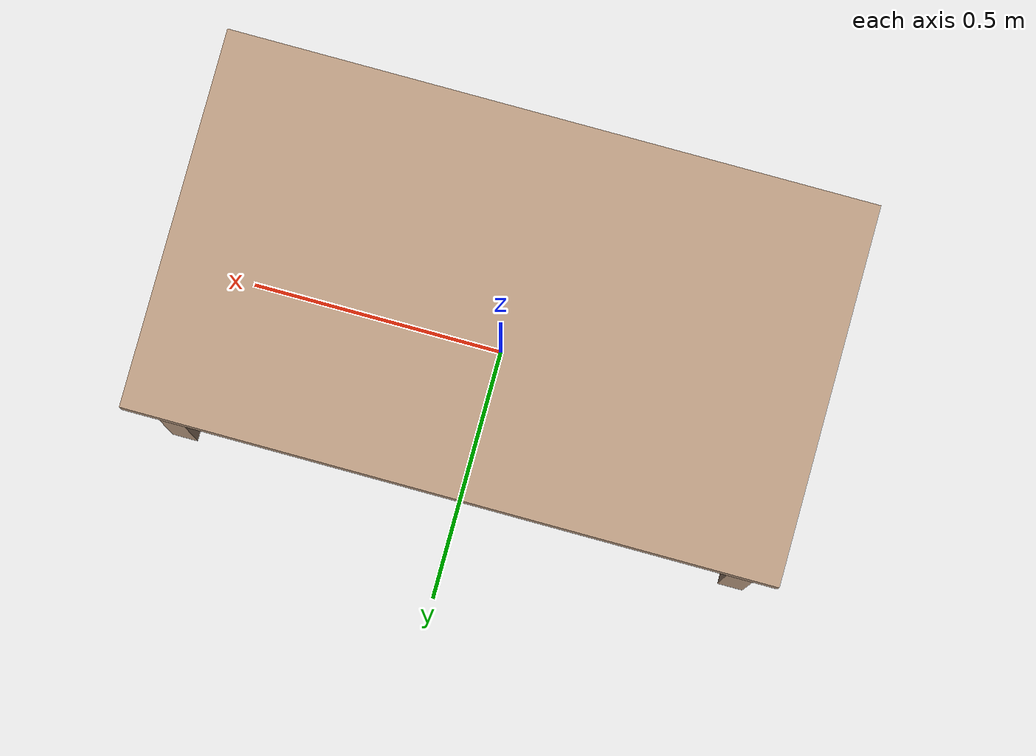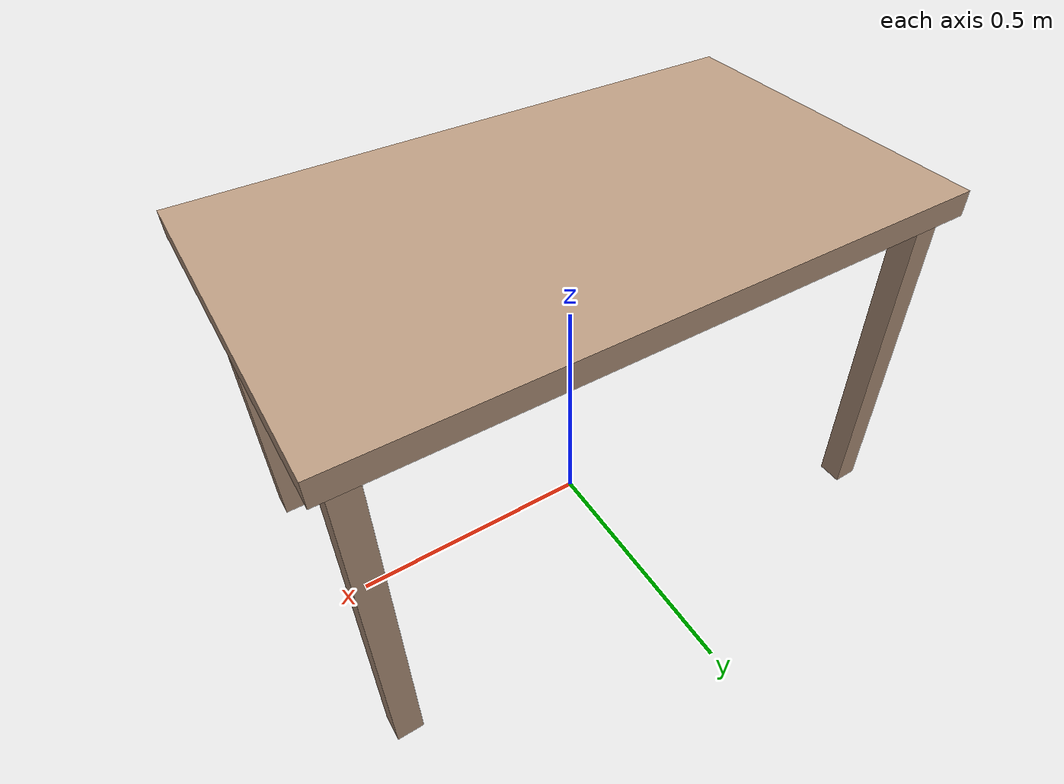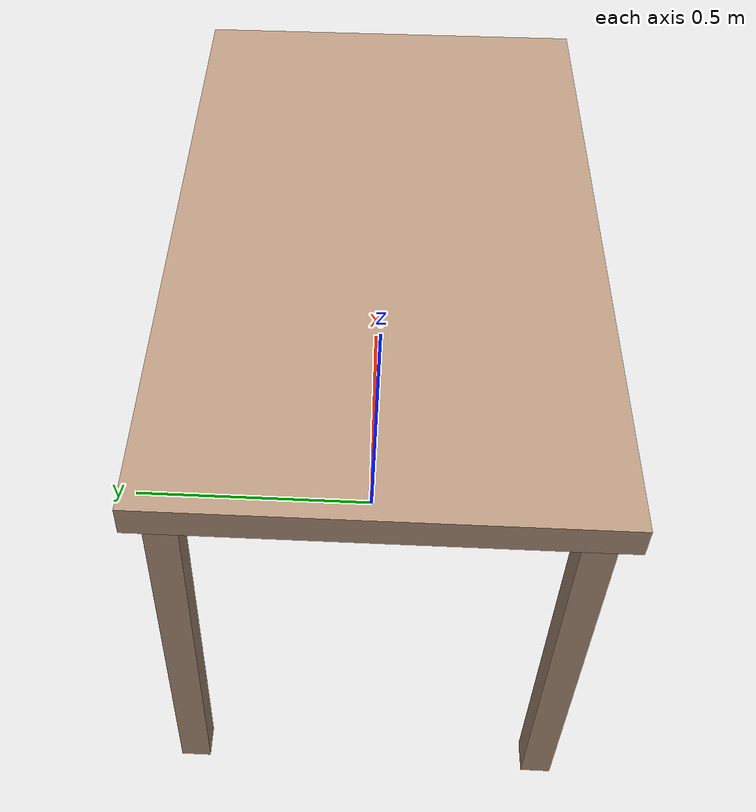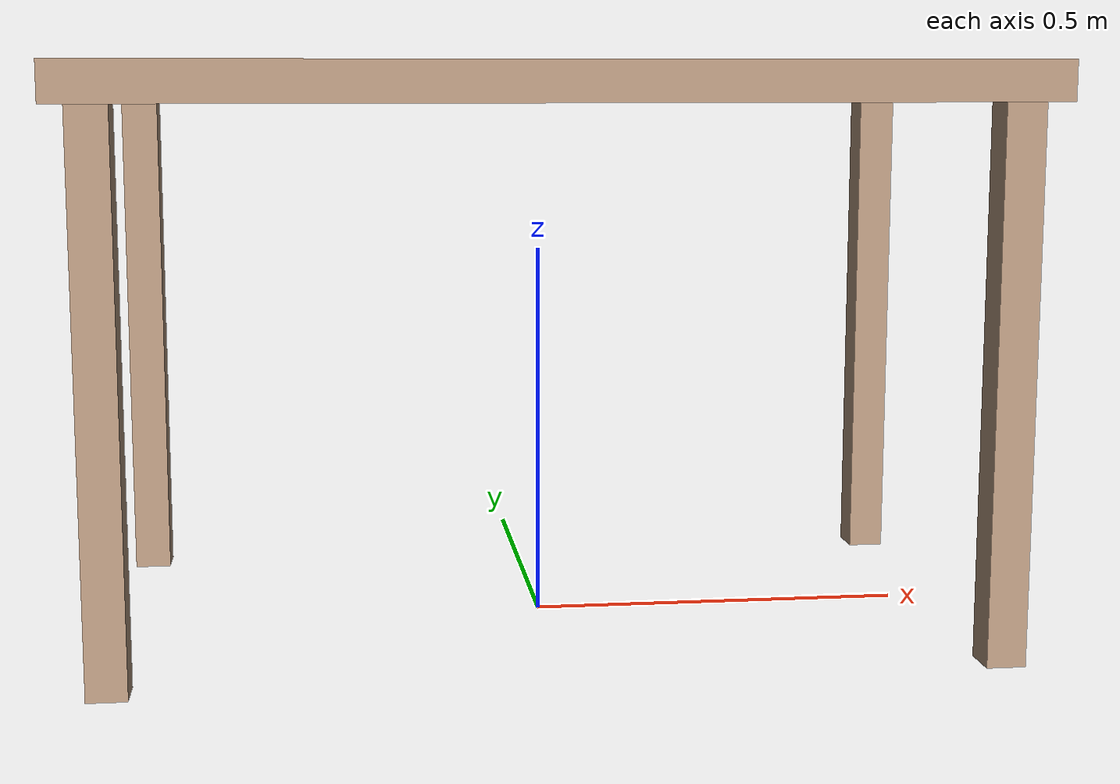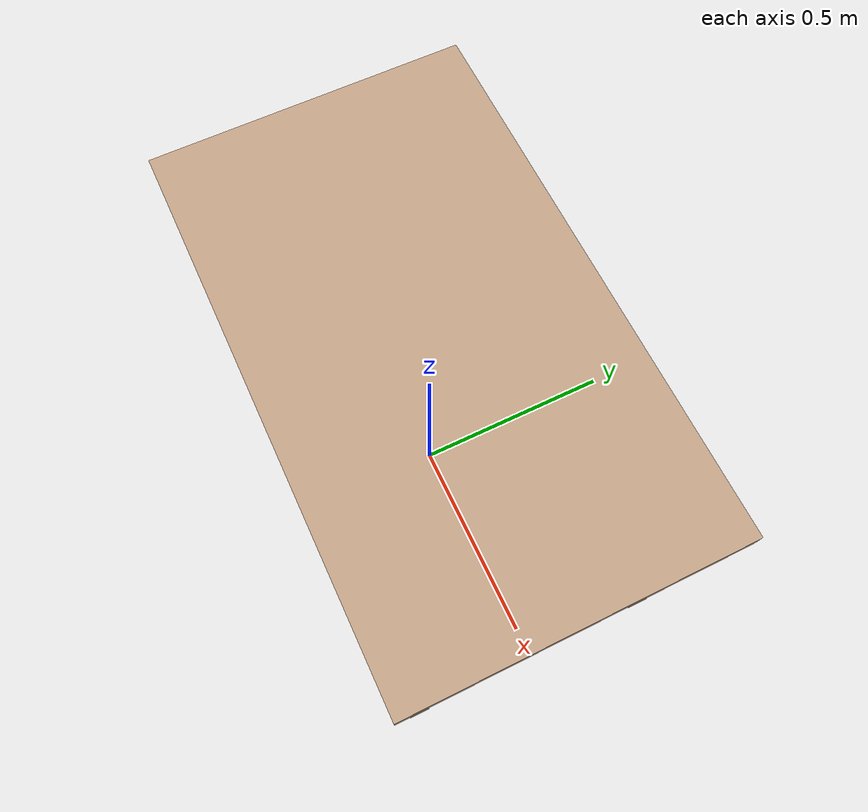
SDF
<?xml version="1.0"?>
<sdf version="1.9">
  <model name="table">
    <static>true</static>
    <link name="link">
      <collision name="collision_0">
        <pose>0 0 0.725 0 0 0</pose>
        <geometry><box><size>1.2 0.7 0.05</size></box></geometry>
      </collision>
      <visual name="visual_0">
        <pose>0 0 0.725 0 0 0</pose>
        <geometry><box><size>1.2 0.7 0.05</size></box></geometry>
        <material>
          <ambient>0.72 0.60 0.50 1</ambient>
          <diffuse>0.72 0.60 0.50 1</diffuse>
        </material>
      </visual>
      <collision name="collision_1">
        <pose>0.55 0.3 0.35 0 0 0</pose>
        <geometry><box><size>0.05 0.05 0.7</size></box></geometry>
      </collision>
      <visual name="visual_1">
        <pose>0.55 0.3 0.35 0 0 0</pose>
        <geometry><box><size>0.05 0.05 0.7</size></box></geometry>
        <material>
          <ambient>0.72 0.60 0.50 1</ambient>
          <diffuse>0.72 0.60 0.50 1</diffuse>
        </material>
      </visual>
      <collision name="collision_2">
        <pose>0.55 -0.3 0.35 0 0 0</pose>
        <geometry><box><size>0.05 0.05 0.7</size></box></geometry>
      </collision>
      <visual name="visual_2">
        <pose>0.55 -0.3 0.35 0 0 0</pose>
        <geometry><box><size>0.05 0.05 0.7</size></box></geometry>
        <material>
          <ambient>0.72 0.60 0.50 1</ambient>
          <diffuse>0.72 0.60 0.50 1</diffuse>
        </material>
      </visual>
      <collision name="collision_3">
        <pose>-0.55 0.3 0.35 0 0 0</pose>
        <geometry><box><size>0.05 0.05 0.7</size></box></geometry>
      </collision>
      <visual name="visual_3">
        <pose>-0.55 0.3 0.35 0 0 0</pose>
        <geometry><box><size>0.05 0.05 0.7</size></box></geometry>
        <material>
          <ambient>0.72 0.60 0.50 1</ambient>
          <diffuse>0.72 0.60 0.50 1</diffuse>
        </material>
      </visual>
      <collision name="collision_4">
        <pose>-0.55 -0.3 0.35 0 0 0</pose>
        <geometry><box><size>0.05 0.05 0.7</size></box></geometry>
      </collision>
      <visual name="visual_4">
        <pose>-0.55 -0.3 0.35 0 0 0</pose>
        <geometry><box><size>0.05 0.05 0.7</size></box></geometry>
        <material>
          <ambient>0.72 0.60 0.50 1</ambient>
          <diffuse>0.72 0.60 0.50 1</diffuse>
        </material>
      </visual>
    </link>
  </model>
</sdf>
